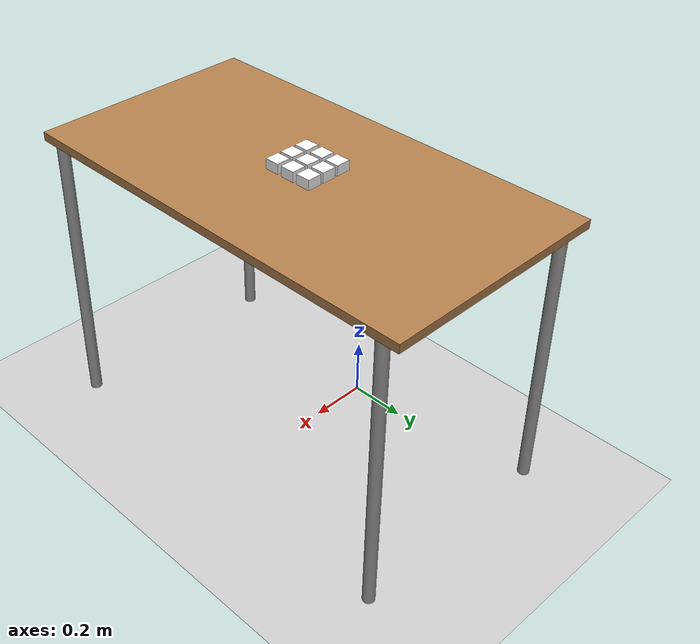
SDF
<?xml version="1.0" ?>
<sdf version="1.6">
  <world name="CRANE-X7 with Table">
    <scene>
      <shadows>0</shadows>
    </scene>

    <include>
      <uri>model://sun</uri>
    </include>

    <model name="table">
      <include>
        <uri>model://table</uri>
      </include>

      <!-- X7を机の端に配置するため、机を移動、回転する -->
      <pose>0.29 0 0 0 0 1.5708</pose>
    </model>

    <!-- box1 -->
    <model name="wood_cube1">
      <include>
        <uri>model://wood_cube_5cm</uri>
      </include>

      <pose>0.20 0 1.0 0 0 0</pose>
    </model>

    <!-- box2 left -->
    <model name="wood_cube2">
      <include>
        <uri>model://wood_cube_5cm</uri>
      </include>

      <pose>0.20 0.065 1.0 0 0 0</pose>
    </model>

    <!-- box3 right -->
    <model name="wood_cube3">
      <include>
        <uri>model://wood_cube_5cm</uri>
      </include>

      <pose>0.20 -0.065 1.0 0 0 0</pose>
    </model>

    <!-- box4 -->
    <model name="wood_cube4">
      <include>
        <uri>model://wood_cube_5cm</uri>
      </include>

      <pose>0.26 0 1.0 0 0 0</pose>
    </model>

    <!-- box5 -->
    <model name="wood_cube5">
      <include>
        <uri>model://wood_cube_5cm</uri>
      </include>

      <pose>0.26 0.065 1.0 0 0 0</pose>
    </model>

    <!-- box6 -->
    <model name="wood_cube6">
      <include>
        <uri>model://wood_cube_5cm</uri>
      </include>

      <pose>0.26 -0.065 1.0 0 0 0</pose>
    </model>

    <!-- box7 -->
    <model name="wood_cube7">
      <include>
        <uri>model://wood_cube_5cm</uri>
      </include>

      <pose>0.32 0.0 1.00 0 0 0</pose>
    </model>

    <!-- box8 -->
    <model name="wood_cube8">
      <include>
        <uri>model://wood_cube_5cm</uri>
      </include>

      <pose>0.32 0.065 1.00 0 0 0</pose>
    </model>

    <!-- box9 -->
    <model name="wood_cube9">
      <include>
        <uri>model://wood_cube_5cm</uri>
      </include>

      <pose>0.32 -0.065 1.00 0 0 0</pose>
    </model>

    <model name="ground_plane">
      <include>
        <uri>model://ground_plane</uri>
      </include>

      <joint name='ground_joint' type='fixed'>
        <parent>ground_plane::link</parent>
        <child>table::link</child>
      </joint>
    </model>
  </world>
</sdf>

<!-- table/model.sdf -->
<sdf version="1.5">
  <model name="table">
    <static>true</static>
    <link name="link">
      <collision name="surface">
        <pose>0 0 1.0 0 0 0</pose>
        <geometry>
          <box>
            <size>1.5 0.8 0.03</size>
          </box>
        </geometry>
        <surface>
          <friction>
            <ode>
              <mu>0.6</mu>
              <mu2>0.6</mu2>
            </ode>
          </friction>
        </surface>
      </collision>
      <visual name="visual1">
        <pose>0 0 1.0 0 0 0</pose>
        <geometry>
          <box>
            <size>1.5 0.8 0.03</size>
          </box>
        </geometry>
        <material>
          <script>
            <uri>model://media/materials/scripts/gazebo.material</uri>
            <name>Gazebo/Wood</name>
          </script>
        </material>
      </visual>
      <collision name="front_left_leg">
        <pose>0.68 0.38 0.5 0 0 0</pose>
        <geometry>
          <cylinder>
            <radius>0.02</radius>
            <length>1.0</length>
          </cylinder>
        </geometry>
      </collision>
      <visual name="front_left_leg">
        <pose>0.68 0.38 0.5 0 0 0</pose>
        <geometry>
          <cylinder>
            <radius>0.02</radius>
            <length>1.0</length>
          </cylinder>
        </geometry>
        <material>
          <script>
            <uri>model://media/materials/scripts/gazebo.material</uri>
            <name>Gazebo/Grey</name>
          </script>
        </material>
      </visual>
      <collision name="front_right_leg">
        <pose>0.68 -0.38 0.5 0 0 0</pose>
        <geometry>
          <cylinder>
            <radius>0.02</radius>
            <length>1.0</length>
          </cylinder>
        </geometry>
      </collision>
      <visual name="front_right_leg">
        <pose>0.68 -0.38 0.5 0 0 0</pose>
        <geometry>
          <cylinder>
            <radius>0.02</radius>
            <length>1.0</length>
          </cylinder>
        </geometry>
        <material>
          <script>
            <uri>model://media/materials/scripts/gazebo.material</uri>
            <name>Gazebo/Grey</name>
          </script>
        </material>
      </visual>
      <collision name="back_right_leg">
        <pose>-0.68 -0.38 0.5 0 0 0</pose>
        <geometry>
          <cylinder>
            <radius>0.02</radius>
            <length>1.0</length>
          </cylinder>
        </geometry>
      </collision>
      <visual name="back_right_leg">
        <pose>-0.68 -0.38 0.5 0 0 0</pose>
        <geometry>
          <cylinder>
            <radius>0.02</radius>
            <length>1.0</length>
          </cylinder>
        </geometry>
        <material>
          <script>
            <uri>model://media/materials/scripts/gazebo.material</uri>
            <name>Gazebo/Grey</name>
          </script>
        </material>
      </visual>
      <collision name="back_left_leg">
        <pose>-0.68 0.38 0.5 0 0 0</pose>
        <geometry>
          <cylinder>
            <radius>0.02</radius>
            <length>1.0</length>
          </cylinder>
        </geometry>
      </collision>
      <visual name="back_left_leg">
        <pose>-0.68 0.38 0.5 0 0 0</pose>
        <geometry>
          <cylinder>
            <radius>0.02</radius>
            <length>1.0</length>
          </cylinder>
        </geometry>
        <material>
          <script>
            <uri>model://media/materials/scripts/gazebo.material</uri>
            <name>Gazebo/Grey</name>
          </script>
        </material>
      </visual>
    </link>
  </model>
</sdf>

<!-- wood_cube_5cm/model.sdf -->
<sdf version="1.5">
  <model name="wood_cube_5cm">
    <link name="link">
      <pose>0 0 0.025 0 0 0</pose>
      <inertial>
        <mass>0.0565</mass>
        <inertia>
          <ixx>2.3541666666666672e-05</ixx>
          <ixy>0</ixy>
          <ixz>0</ixz>
          <iyy>2.3541666666666672e-05</iyy>
          <iyz>0</iyz>
          <izz>2.3541666666666672e-05</izz>
        </inertia>
      </inertial>

      <collision name="collision">
        <geometry>
          <box>
            <size>0.05 0.05 0.05</size>
          </box>
        </geometry>
        <surface>
          <contact>
            <!-- Red Pine coefficients for longitudinal axis of the wood
                 according to:
                 http://www.fpl.fs.fed.us/documnts/fplgtr/fplgtr113/ch04.pdf -->
            <poissons_ratio>0.347</poissons_ratio>
            <elastic_modulus>8.8e+09</elastic_modulus>
            <ode>
              <kp>100000</kp>
              <kd>1</kd>
              <max_vel>1.0</max_vel>
              <min_depth>0.001</min_depth>
            </ode>
          </contact>
          <friction>
            <torsional>
              <coefficient>1.0</coefficient>
              <use_patch_radius>0</use_patch_radius>
              <surface_radius>0.05</surface_radius>
            </torsional>
          </friction>
        </surface>
      </collision>

      <visual name="visual">
        <geometry>
          <box>
            <size>0.05 0.05 0.05</size>
          </box>
        </geometry>
        <material><diffuse>1 1 1 1</diffuse><specular>0.1 0.1 0.1 1</specular></material>
      </visual>

    </link>
  </model>
</sdf>
